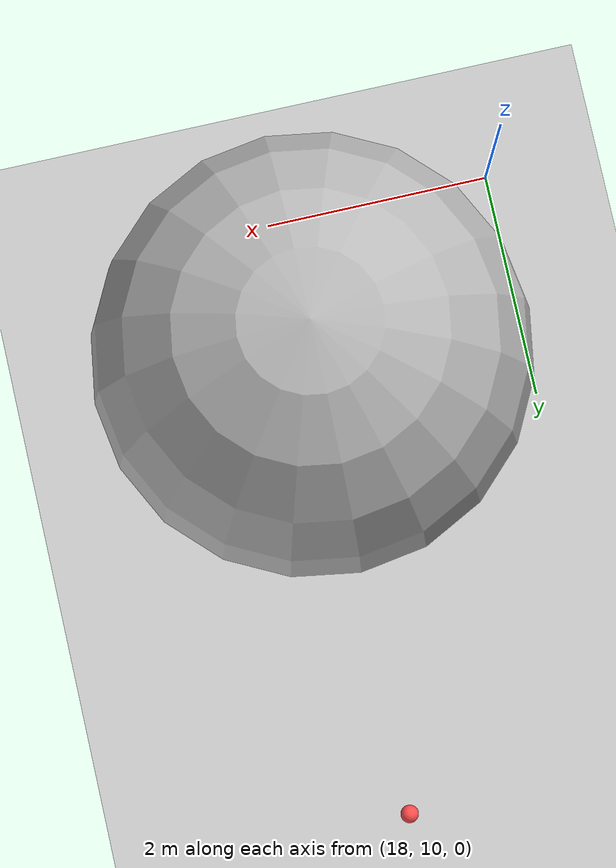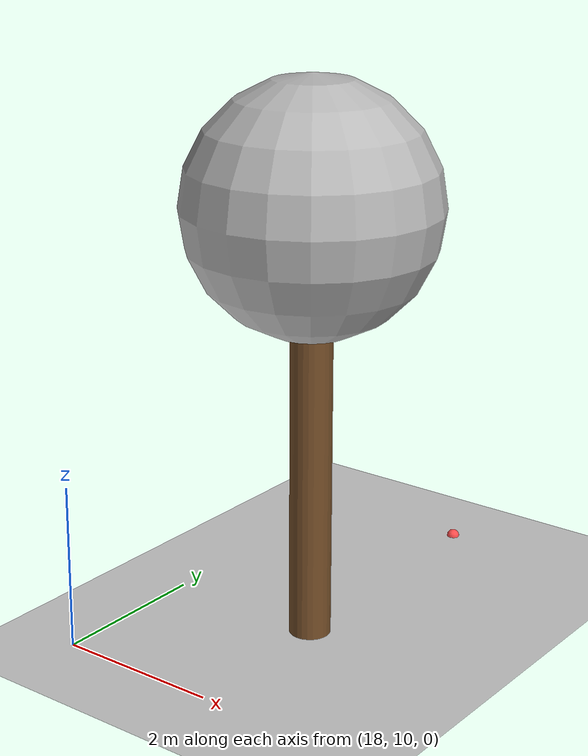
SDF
<sdf version="1.7">
 <world name="default">
  <model name="ground_plane">
   <static>1</static>
   <link name="link">
    <collision name="collision">
     <geometry><plane><normal>0 0 1</normal><size>100 100</size></plane></geometry>
     <surface>
      <contact><collide_bitmask>65535</collide_bitmask></contact>
      <friction><ode><mu>100</mu><mu2>50</mu2></ode></friction>
     </surface>
    </collision>
    <visual name="visual">
     <cast_shadows>0</cast_shadows>
     <geometry><plane><normal>0 0 1</normal><size>100 100</size></plane></geometry>
     <material>
      <script><uri>file://media/materials/scripts/gazebo.material</uri><name>Gazebo/Grey</name></script>
     </material>
    </visual>
   </link>
  </model>
  <model name="tree_simple_63">
   <static>1</static>
   <link name="link">
    <pose>0 0 0.1 0 -0 0</pose>
    <inertial>
     <mass>666</mass>
     <inertia>
      <ixx>0.0861167</ixx>
      <ixy>0</ixy>
      <ixz>0</ixz>
      <iyy>0.0861167</iyy>
      <iyz>0</iyz>
      <izz>0.0861167</izz>
     </inertia>
    </inertial>
    <collision name="collision_trunk">
     <pose>0 0 2 0 -0 0</pose>
     <geometry><cylinder><radius>0.25</radius><length>4</length></cylinder></geometry>
     <surface>
      <contact>
       <poissons_ratio>0.347</poissons_ratio>
       <elastic_modulus>8.8e+09</elastic_modulus>
       <ode><kp>100000</kp><kd>100</kd><max_vel>100</max_vel><min_depth>0.001</min_depth></ode>
      </contact>
      <friction>
       <torsional>
        <coefficient>1</coefficient>
        <use_patch_radius>0</use_patch_radius>
        <surface_radius>0.01</surface_radius>
       </torsional>
      </friction>
     </surface>
    </collision>
    <collision name="collision_treetop">
     <pose>0 0 5.2 0 -0 0</pose>
     <geometry><sphere><radius>1.5</radius></sphere></geometry>
     <surface>
      <contact>
       <poissons_ratio>0.347</poissons_ratio>
       <elastic_modulus>8.8e+09</elastic_modulus>
       <ode><kp>100000</kp><kd>100</kd><max_vel>100</max_vel><min_depth>0.001</min_depth></ode>
      </contact>
      <friction>
       <torsional>
        <coefficient>1</coefficient>
        <use_patch_radius>0</use_patch_radius>
        <surface_radius>0.01</surface_radius>
       </torsional>
      </friction>
     </surface>
    </collision>
    <visual name="trunk">
     <pose>0 0 2 0 -0 0</pose>
     <geometry><cylinder><radius>0.25</radius><length>4</length></cylinder></geometry>
     <material>
      <script>
       <uri>model://tree_simple/scripts</uri>
       <uri>model://tree_simple/materials/textures</uri>
       <name>TreeSimple/Trunk</name>
      </script>
     </material>
    </visual>
    <visual name="treetop">
     <pose>0 0 5.2 0 -0 0</pose>
     <geometry><sphere><radius>1.5</radius></sphere></geometry>
     <material>
      <script>
       <uri>model://tree_simple/scripts</uri>
       <uri>model://tree_simple/materials/textures</uri>
       <name>TreeSimple/Treetop</name>
      </script>
     </material>
    </visual>
   </link>
   <pose>20 12 -0.1 0 -0 0</pose>
  </model>
  <model name="seed_red_244">
   <link name="link">
    <inertial>
     <mass>1</mass>
     <inertia><ixx>0.1</ixx><ixy>0</ixy><ixz>0</ixz><iyy>0.1</iyy><iyz>0</iyz><izz>0.1</izz></inertia>
    </inertial>
    <visual name="visual">
     <geometry><sphere><radius>0.08</radius></sphere></geometry>
     <material>
      <script><name>Gazebo/Grey</name><uri>file://media/materials/scripts/gazebo.material</uri></script>
      <shader type="pixel"><normal_map>__default__</normal_map></shader>
      <ambient>1 0.3 0.3 1</ambient>
      <diffuse>0.7 0.7 0.7 1</diffuse>
      <specular>0.01 0.01 0.01 1</specular>
      <emissive>0 0 0 1</emissive>
     </material>
    </visual>
    <collision name="collision">
     <geometry><sphere><radius>0.0005</radius></sphere></geometry>
     <surface>
      <friction>
       <ode><mu>1</mu><mu2>1</mu2><fdir1>0 0 0</fdir1><slip1>0</slip1><slip2>0</slip2></ode>
       <torsional>
        <coefficient>1</coefficient>
        <patch_radius>0</patch_radius>
        <surface_radius>0</surface_radius>
        <use_patch_radius>1</use_patch_radius>
        <ode><slip>0</slip></ode>
       </torsional>
      </friction>
      <bounce><restitution_coefficient>0</restitution_coefficient><threshold>1e+06</threshold></bounce>
      <contact>
       <collide_without_contact>0</collide_without_contact>
       <collide_without_contact_bitmask>1</collide_without_contact_bitmask>
       <collide_bitmask>1</collide_bitmask>
       <ode>
        <soft_cfm>0</soft_cfm>
        <soft_erp>0.2</soft_erp>
        <kp>1e+13</kp>
        <kd>1</kd>
        <max_vel>0.01</max_vel>
        <min_depth>0</min_depth>
       </ode>
       <bullet>
        <split_impulse>1</split_impulse>
        <split_impulse_penetration_threshold>-0.01</split_impulse_penetration_threshold>
        <soft_cfm>0</soft_cfm>
        <soft_erp>0.2</soft_erp>
        <kp>1e+13</kp>
        <kd>1</kd>
       </bullet>
      </contact>
     </surface>
    </collision>
   </link>
   <static>0</static>
   <pose>19.9208 15.375 0.0005 0 -0 0</pose>
  </model>
  <model name="seed_red_265">
   <link name="link">
    <inertial>
     <mass>1</mass>
     <inertia><ixx>0.1</ixx><ixy>0</ixy><ixz>0</ixz><iyy>0.1</iyy><iyz>0</iyz><izz>0.1</izz></inertia>
    </inertial>
    <visual name="visual">
     <geometry><sphere><radius>0.08</radius></sphere></geometry>
     <material>
      <script><name>Gazebo/Grey</name><uri>file://media/materials/scripts/gazebo.material</uri></script>
      <shader type="pixel"><normal_map>__default__</normal_map></shader>
      <ambient>1 0.3 0.3 1</ambient>
      <diffuse>0.7 0.7 0.7 1</diffuse>
      <specular>0.01 0.01 0.01 1</specular>
      <emissive>0 0 0 1</emissive>
     </material>
    </visual>
    <collision name="collision">
     <geometry><sphere><radius>0.0005</radius></sphere></geometry>
     <surface>
      <friction>
       <ode><mu>1</mu><mu2>1</mu2><fdir1>0 0 0</fdir1><slip1>0</slip1><slip2>0</slip2></ode>
       <torsional>
        <coefficient>1</coefficient>
        <patch_radius>0</patch_radius>
        <surface_radius>0</surface_radius>
        <use_patch_radius>1</use_patch_radius>
        <ode><slip>0</slip></ode>
       </torsional>
      </friction>
      <bounce><restitution_coefficient>0</restitution_coefficient><threshold>1e+06</threshold></bounce>
      <contact>
       <collide_without_contact>0</collide_without_contact>
       <collide_without_contact_bitmask>1</collide_without_contact_bitmask>
       <collide_bitmask>1</collide_bitmask>
       <ode>
        <soft_cfm>0</soft_cfm>
        <soft_erp>0.2</soft_erp>
        <kp>1e+13</kp>
        <kd>1</kd>
        <max_vel>0.01</max_vel>
        <min_depth>0</min_depth>
       </ode>
       <bullet>
        <split_impulse>1</split_impulse>
        <split_impulse_penetration_threshold>-0.01</split_impulse_penetration_threshold>
        <soft_cfm>0</soft_cfm>
        <soft_erp>0.2</soft_erp>
        <kp>1e+13</kp>
        <kd>1</kd>
       </bullet>
      </contact>
     </surface>
    </collision>
   </link>
   <static>0</static>
   <pose>19.5652 12.7865 0.0005 0 -0 0</pose>
  </model>
 </world>
</sdf>
